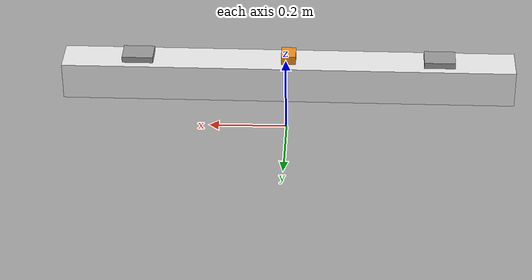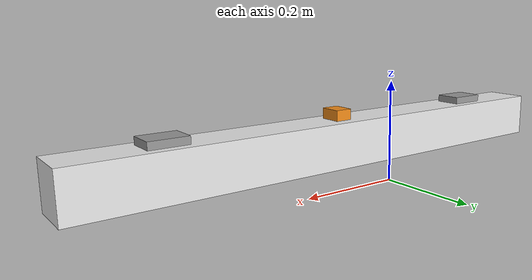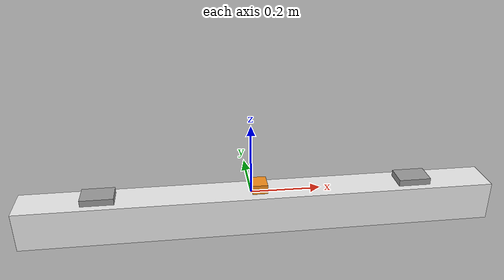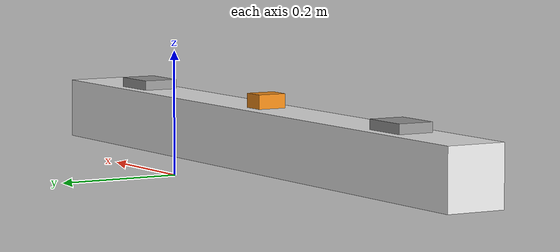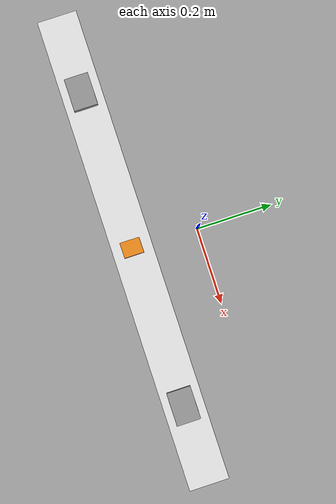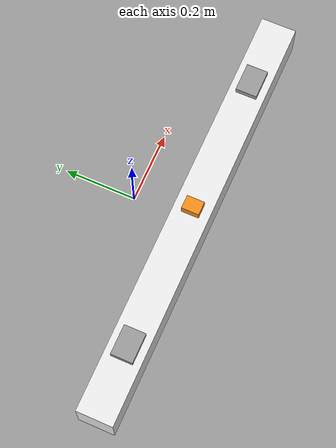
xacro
<?xml version="1.0"?>
<robot xmlns:xacro="http://www.ros.org/wiki/xacro">

    <xacro:property name="nav_length" value="1.2" />
    <xacro:property name="nav_width" value="0.1"/>

    <link name="dummy"/>

    <joint name="dummyjoint" type="fixed">
        <parent link="dummy"/>
        <child link="base_link"/>
        <origin xyz="0 0 0" rpy= "0 0 0"/>
    </joint>

    <link name="base_link">

    </link>

    <link name="gps_link">
        <visual>
            <geometry>
                <box size="${nav_length} ${nav_width} ${nav_width}"/>
            </geometry>
            <material name="white"/>
            <origin xyz="0 0 ${nav_width / 2}" rpy="0 0 0"/>
        </visual>
        <collision>
            <geometry>
                <box size="${nav_length} ${nav_width} ${nav_width}"/>
            </geometry>
            <origin xyz="0 0 ${nav_width / 2}" rpy="0 0 0"/>
        </collision>
    </link>

    <link name="imu_link">
        <visual>
            <geometry>
                <box size="0.0384 0.0488 0.0236"/>
            </geometry>
            <material name="orange" />
            <origin xyz="0 0 0.0118" rpy="0 0 0"/>
        </visual>
        <collision>
            <geometry>
                <box size="0.0384 0.0488 0.0236"/>
            </geometry>
            <origin xyz="0 0 0.0118" rpy="0 0 0"/>
        </collision>
        <xacro:box_inertia m="0.2" l="${nav_width}" w="${nav_width}" h="${nav_width}"
                           xyz="0 0 ${nav_width}" rpy="0 0 0" />
    </link>

   <joint name="base_imu_joint" type="fixed">
        <parent link="base_link"/>
        <child link="imu_link"/>
        <origin xyz="0 -0.17 ${nav_width}" rpy= "0 0 0"/>
    </joint>

    <xacro:macro name="gps_link" params="prefix">
        <link name="${prefix}">
            <visual>
                <geometry>
                    <box size="0.082 0.06 0.0225"/>
                </geometry>
                <material name="grey"/>
                <origin xyz="0 0 ${nav_width / 20}" rpy="0 0 0"/>
            </visual>
            <collision>
                 <geometry>
                    <box size="0.082 0.06 0.0225" />
                </geometry>
                <origin xyz="0 0 ${nav_width / 20}" rpy="0 0 0"/>
            </collision>
            <xacro:cylinder_inertia m="0.1" r="${nav_width}" h="${nav_width / 5}"
                                    xyz="0 0 ${nav_width / 10}" rpy="0 0 0" />
        </link>
    </xacro:macro>

    <xacro:gps_link prefix="rover"/>
    <xacro:gps_link prefix="base"/>

   <joint name="nav_gps_right_joint" type="fixed">
        <parent link="gps_link"/>
        <child link="rover"/>
        <origin xyz="${nav_width * 4} 0 ${nav_width}" rpy= "0 0 0"/>
    </joint>

   <joint name="nav_gps_left_joint" type="fixed">
        <parent link="gps_link"/>
        <child link="base"/>
        <origin xyz="${-nav_width * 4} 0 ${nav_width}" rpy= "0 0 0"/>
    </joint>

    <joint name="gps_base_joint" type="fixed">
        <parent link="base_link"/>
        <child link="gps_link"/>
        <origin xyz="0 -0.17 0" rpy= "0 0 0"/>
    </joint>
</robot>
